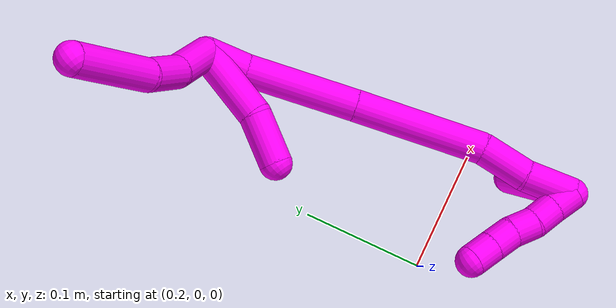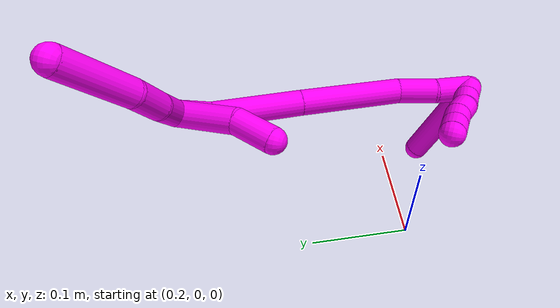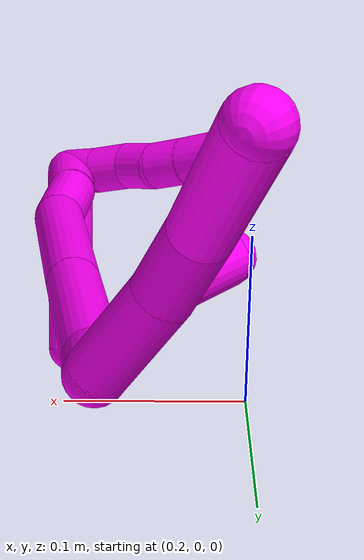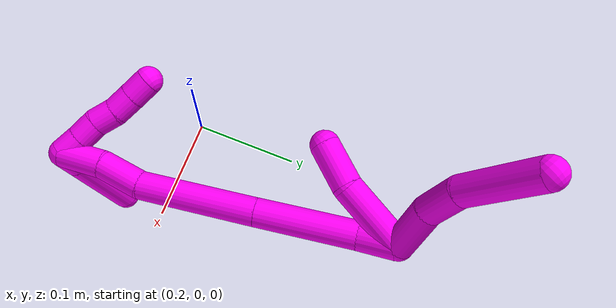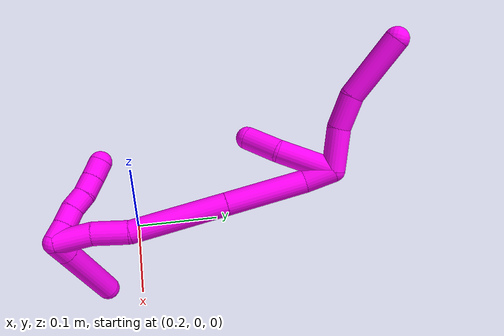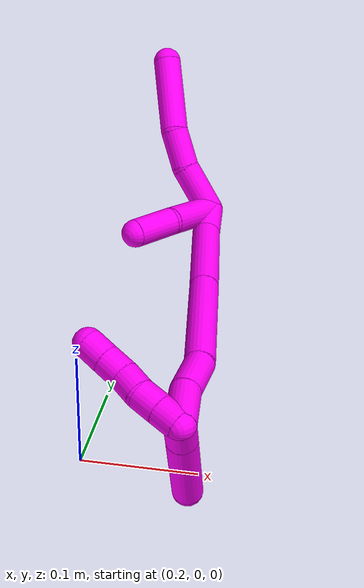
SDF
<sdf version="1.7">
 <world name="default">
  <model name="10">
   <static>0</static>
   <link name="10">
    <collision name="collision-cylinder-e_1_2_8">
     <pose>-0.007839 0.021203 -0.002603 -1.69294 -0.351694 0.396381</pose>
     <geometry><cylinder><radius>0.0125</radius><length>0.04551</length></cylinder></geometry>
     <surface>
      <friction><ode><mu>1.16</mu><mu2>1.16</mu2><slip1>0</slip1><slip2>0</slip2></ode></friction>
      <contact><ode><kp>1e+06</kp><kd>1</kd><max_vel>0</max_vel><min_depth>0.001</min_depth></ode></contact>
     </surface>
    </collision>
    <visual name="visual-cylinder-e_1_2_8">
     <pose>-0.007839 0.021203 -0.002603 -1.69294 -0.351694 0.396381</pose>
     <geometry><cylinder><radius>0.0125</radius><length>0.04551</length></cylinder></geometry>
     <material><ambient>1 0 0.964706 1</ambient></material>
    </visual>
    <collision name="collision-cylinder-e_2_8_9">
     <pose>-0.023078 0.058351 -0.002776 -1.4196 -0.430196 0.371106</pose>
     <geometry><cylinder><radius>0.0125</radius><length>0.035491</length></cylinder></geometry>
     <surface>
      <friction><ode><mu>1.16</mu><mu2>1.16</mu2><slip1>0</slip1><slip2>0</slip2></ode></friction>
      <contact><ode><kp>1e+06</kp><kd>1</kd><max_vel>0</max_vel><min_depth>0.001</min_depth></ode></contact>
     </surface>
    </collision>
    <visual name="visual-cylinder-e_2_8_9">
     <pose>-0.023078 0.058351 -0.002776 -1.4196 -0.430196 0.371106</pose>
     <geometry><cylinder><radius>0.0125</radius><length>0.035491</length></cylinder></geometry>
     <material><ambient>1 0 0.964706 1</ambient></material>
    </visual>
    <collision name="collision-cylinder-e_3_9_6">
     <pose>-0.043132 0.103046 0.013919 -1.11019 -0.375512 0.234563</pose>
     <geometry><cylinder><radius>0.0125</radius><length>0.068999</length></cylinder></geometry>
     <surface>
      <friction><ode><mu>1.16</mu><mu2>1.16</mu2><slip1>0</slip1><slip2>0</slip2></ode></friction>
      <contact><ode><kp>1e+06</kp><kd>1</kd><max_vel>0</max_vel><min_depth>0.001</min_depth></ode></contact>
     </surface>
    </collision>
    <visual name="visual-cylinder-e_3_9_6">
     <pose>-0.043132 0.103046 0.013919 -1.11019 -0.375512 0.234563</pose>
     <geometry><cylinder><radius>0.0125</radius><length>0.068999</length></cylinder></geometry>
     <material><ambient>1 0 0.964706 1</ambient></material>
    </visual>
    <collision name="collision-cylinder-e_1_2_10">
     <pose>-0.004019 0.002014 -0.030168 -3.07493 -0.132138 2.20805</pose>
     <geometry><cylinder><radius>0.0125</radius><length>0.061001</length></cylinder></geometry>
     <surface>
      <friction><ode><mu>1.16</mu><mu2>1.16</mu2><slip1>0</slip1><slip2>0</slip2></ode></friction>
      <contact><ode><kp>1e+06</kp><kd>1</kd><max_vel>0</max_vel><min_depth>0.001</min_depth></ode></contact>
     </surface>
    </collision>
    <visual name="visual-cylinder-e_1_2_10">
     <pose>-0.004019 0.002014 -0.030168 -3.07493 -0.132138 2.20805</pose>
     <geometry><cylinder><radius>0.0125</radius><length>0.061001</length></cylinder></geometry>
     <material><ambient>1 0 0.964706 1</ambient></material>
    </visual>
    <collision name="collision-cylinder-e_2_10_5">
     <pose>-0.004754 0.007473 -0.079245 -2.96138 0.169175 -1.50733</pose>
     <geometry><cylinder><radius>0.0125</radius><length>0.038999</length></cylinder></geometry>
     <surface>
      <friction><ode><mu>1.16</mu><mu2>1.16</mu2><slip1>0</slip1><slip2>0</slip2></ode></friction>
      <contact><ode><kp>1e+06</kp><kd>1</kd><max_vel>0</max_vel><min_depth>0.001</min_depth></ode></contact>
     </surface>
    </collision>
    <visual name="visual-cylinder-e_2_10_5">
     <pose>-0.004754 0.007473 -0.079245 -2.96138 0.169175 -1.50733</pose>
     <geometry><cylinder><radius>0.0125</radius><length>0.038999</length></cylinder></geometry>
     <material><ambient>1 0 0.964706 1</ambient></material>
    </visual>
    <collision name="collision-cylinder-e_1_2_11">
     <pose>-0.000366 -0.009723 -0.013159 2.50526 -0.02235 -0.067836</pose>
     <geometry><cylinder><radius>0.0125</radius><length>0.032731</length></cylinder></geometry>
     <surface>
      <friction><ode><mu>1.16</mu><mu2>1.16</mu2><slip1>0</slip1><slip2>0</slip2></ode></friction>
      <contact><ode><kp>1e+06</kp><kd>1</kd><max_vel>0</max_vel><min_depth>0.001</min_depth></ode></contact>
     </surface>
    </collision>
    <visual name="visual-cylinder-e_1_2_11">
     <pose>-0.000366 -0.009723 -0.013159 2.50526 -0.02235 -0.067836</pose>
     <geometry><cylinder><radius>0.0125</radius><length>0.032731</length></cylinder></geometry>
     <material><ambient>1 0 0.964706 1</ambient></material>
    </visual>
    <collision name="collision-cylinder-e_2_11_12">
     <pose>-0.010738 -0.043106 -0.061189 2.54542 -0.233149 -0.728312</pose>
     <geometry><cylinder><radius>0.0125</radius><length>0.086623</length></cylinder></geometry>
     <surface>
      <friction><ode><mu>1.16</mu><mu2>1.16</mu2><slip1>0</slip1><slip2>0</slip2></ode></friction>
      <contact><ode><kp>1e+06</kp><kd>1</kd><max_vel>0</max_vel><min_depth>0.001</min_depth></ode></contact>
     </surface>
    </collision>
    <visual name="visual-cylinder-e_2_11_12">
     <pose>-0.010738 -0.043106 -0.061189 2.54542 -0.233149 -0.728312</pose>
     <geometry><cylinder><radius>0.0125</radius><length>0.086623</length></cylinder></geometry>
     <material><ambient>1 0 0.964706 1</ambient></material>
    </visual>
    <collision name="collision-cylinder-e_3_12_13">
     <pose>-0.031967 -0.094892 -0.137853 2.54924 -0.219181 -0.69214</pose>
     <geometry><cylinder><radius>0.0125</radius><length>0.103221</length></cylinder></geometry>
     <surface>
      <friction><ode><mu>1.16</mu><mu2>1.16</mu2><slip1>0</slip1><slip2>0</slip2></ode></friction>
      <contact><ode><kp>1e+06</kp><kd>1</kd><max_vel>0</max_vel><min_depth>0.001</min_depth></ode></contact>
     </surface>
    </collision>
    <visual name="visual-cylinder-e_3_12_13">
     <pose>-0.031967 -0.094892 -0.137853 2.54924 -0.219181 -0.69214</pose>
     <geometry><cylinder><radius>0.0125</radius><length>0.103221</length></cylinder></geometry>
     <material><ambient>1 0 0.964706 1</ambient></material>
    </visual>
    <collision name="collision-cylinder-e_4_13_14">
     <pose>-0.046265 -0.129218 -0.197702 2.81082 -0.159788 -0.894525</pose>
     <geometry><cylinder><radius>0.0125</radius><length>0.038674</length></cylinder></geometry>
     <surface>
      <friction><ode><mu>1.16</mu><mu2>1.16</mu2><slip1>0</slip1><slip2>0</slip2></ode></friction>
      <contact><ode><kp>1e+06</kp><kd>1</kd><max_vel>0</max_vel><min_depth>0.001</min_depth></ode></contact>
     </surface>
    </collision>
    <visual name="visual-cylinder-e_4_13_14">
     <pose>-0.046265 -0.129218 -0.197702 2.81082 -0.159788 -0.894525</pose>
     <geometry><cylinder><radius>0.0125</radius><length>0.038674</length></cylinder></geometry>
     <material><ambient>1 0 0.964706 1</ambient></material>
    </visual>
    <collision name="collision-cylinder-e_5_14_1">
     <pose>-0.053287 -0.145174 -0.232025 2.60138 -0.205074 -0.71165</pose>
     <geometry><cylinder><radius>0.0125</radius><length>0.038751</length></cylinder></geometry>
     <surface>
      <friction><ode><mu>1.16</mu><mu2>1.16</mu2><slip1>0</slip1><slip2>0</slip2></ode></friction>
      <contact><ode><kp>1e+06</kp><kd>1</kd><max_vel>0</max_vel><min_depth>0.001</min_depth></ode></contact>
     </surface>
    </collision>
    <visual name="visual-cylinder-e_5_14_1">
     <pose>-0.053287 -0.145174 -0.232025 2.60138 -0.205074 -0.71165</pose>
     <geometry><cylinder><radius>0.0125</radius><length>0.038751</length></cylinder></geometry>
     <material><ambient>1 0 0.964706 1</ambient></material>
    </visual>
    <collision name="collision-cylinder-e_1_1_15">
     <pose>-0.053724 -0.145573 -0.247929 -1.53189 0.358534 -0.345124</pose>
     <geometry><cylinder><radius>0.0125</radius><length>0.02</length></cylinder></geometry>
     <surface>
      <friction><ode><mu>1.16</mu><mu2>1.16</mu2><slip1>0</slip1><slip2>0</slip2></ode></friction>
      <contact><ode><kp>1e+06</kp><kd>1</kd><max_vel>0</max_vel><min_depth>0.001</min_depth></ode></contact>
     </surface>
    </collision>
    <visual name="visual-cylinder-e_1_1_15">
     <pose>-0.053724 -0.145573 -0.247929 -1.53189 0.358534 -0.345124</pose>
     <geometry><cylinder><radius>0.0125</radius><length>0.02</length></cylinder></geometry>
     <material><ambient>1 0 0.964706 1</ambient></material>
    </visual>
    <collision name="collision-cylinder-e_2_15_16">
     <pose>-0.04723 -0.126673 -0.247649 -1.57964 0.303151 -0.305802</pose>
     <geometry><cylinder><radius>0.0125</radius><length>0.02</length></cylinder></geometry>
     <surface>
      <friction><ode><mu>1.16</mu><mu2>1.16</mu2><slip1>0</slip1><slip2>0</slip2></ode></friction>
      <contact><ode><kp>1e+06</kp><kd>1</kd><max_vel>0</max_vel><min_depth>0.001</min_depth></ode></contact>
     </surface>
    </collision>
    <visual name="visual-cylinder-e_2_15_16">
     <pose>-0.04723 -0.126673 -0.247649 -1.57964 0.303151 -0.305802</pose>
     <geometry><cylinder><radius>0.0125</radius><length>0.02</length></cylinder></geometry>
     <material><ambient>1 0 0.964706 1</ambient></material>
    </visual>
    <collision name="collision-cylinder-e_3_16_17">
     <pose>-0.040947 -0.107987 -0.245378 -1.31859 0.335975 -0.261352</pose>
     <geometry><cylinder><radius>0.0125</radius><length>0.02</length></cylinder></geometry>
     <surface>
      <friction><ode><mu>1.16</mu><mu2>1.16</mu2><slip1>0</slip1><slip2>0</slip2></ode></friction>
      <contact><ode><kp>1e+06</kp><kd>1</kd><max_vel>0</max_vel><min_depth>0.001</min_depth></ode></contact>
     </surface>
    </collision>
    <visual name="visual-cylinder-e_3_16_17">
     <pose>-0.040947 -0.107987 -0.245378 -1.31859 0.335975 -0.261352</pose>
     <geometry><cylinder><radius>0.0125</radius><length>0.02</length></cylinder></geometry>
     <material><ambient>1 0 0.964706 1</ambient></material>
    </visual>
    <collision name="collision-cylinder-e_4_17_18">
     <pose>-0.034979 -0.089213 -0.242712 -1.53862 0.270445 -0.261979</pose>
     <geometry><cylinder><radius>0.0125</radius><length>0.02</length></cylinder></geometry>
     <surface>
      <friction><ode><mu>1.16</mu><mu2>1.16</mu2><slip1>0</slip1><slip2>0</slip2></ode></friction>
      <contact><ode><kp>1e+06</kp><kd>1</kd><max_vel>0</max_vel><min_depth>0.001</min_depth></ode></contact>
     </surface>
    </collision>
    <visual name="visual-cylinder-e_4_17_18">
     <pose>-0.034979 -0.089213 -0.242712 -1.53862 0.270445 -0.261979</pose>
     <geometry><cylinder><radius>0.0125</radius><length>0.02</length></cylinder></geometry>
     <material><ambient>1 0 0.964706 1</ambient></material>
    </visual>
    <collision name="collision-cylinder-e_5_18_4">
     <pose>-0.029865 -0.069888 -0.242133 -1.54308 0.246777 -0.240096</pose>
     <geometry><cylinder><radius>0.0125</radius><length>0.02</length></cylinder></geometry>
     <surface>
      <friction><ode><mu>1.16</mu><mu2>1.16</mu2><slip1>0</slip1><slip2>0</slip2></ode></friction>
      <contact><ode><kp>1e+06</kp><kd>1</kd><max_vel>0</max_vel><min_depth>0.001</min_depth></ode></contact>
     </surface>
    </collision>
    <visual name="visual-cylinder-e_5_18_4">
     <pose>-0.029865 -0.069888 -0.242133 -1.54308 0.246777 -0.240096</pose>
     <geometry><cylinder><radius>0.0125</radius><length>0.02</length></cylinder></geometry>
     <material><ambient>1 0 0.964706 1</ambient></material>
    </visual>
    <collision name="collision-cylinder-e_1_1_19">
     <pose>-0.048254 -0.158697 -0.244203 0.744238 1.0163 0.428084</pose>
     <geometry><cylinder><radius>0.0125</radius><length>0.021124</length></cylinder></geometry>
     <surface>
      <friction><ode><mu>1.16</mu><mu2>1.16</mu2><slip1>0</slip1><slip2>0</slip2></ode></friction>
      <contact><ode><kp>1e+06</kp><kd>1</kd><max_vel>0</max_vel><min_depth>0.001</min_depth></ode></contact>
     </surface>
    </collision>
    <visual name="visual-cylinder-e_1_1_19">
     <pose>-0.048254 -0.158697 -0.244203 0.744238 1.0163 0.428084</pose>
     <geometry><cylinder><radius>0.0125</radius><length>0.021124</length></cylinder></geometry>
     <material><ambient>1 0 0.964706 1</ambient></material>
    </visual>
    <collision name="collision-cylinder-e_2_19_3">
     <pose>-0.005694 -0.176674 -0.225084 0.757418 1.01877 0.437406</pose>
     <geometry><cylinder><radius>0.0125</radius><length>0.078876</length></cylinder></geometry>
     <surface>
      <friction><ode><mu>1.16</mu><mu2>1.16</mu2><slip1>0</slip1><slip2>0</slip2></ode></friction>
      <contact><ode><kp>1e+06</kp><kd>1</kd><max_vel>0</max_vel><min_depth>0.001</min_depth></ode></contact>
     </surface>
    </collision>
    <visual name="visual-cylinder-e_2_19_3">
     <pose>-0.005694 -0.176674 -0.225084 0.757418 1.01877 0.437406</pose>
     <geometry><cylinder><radius>0.0125</radius><length>0.078876</length></cylinder></geometry>
     <material><ambient>1 0 0.964706 1</ambient></material>
    </visual>
    <collision name="collision-sphere-3">
     <pose>0.027886 -0.190883 -0.210057 0 -0 0</pose>
     <geometry><sphere><radius>0.0125</radius></sphere></geometry>
     <surface>
      <friction><ode><mu>1.16</mu><mu2>1.16</mu2><slip1>0</slip1><slip2>0</slip2></ode></friction>
      <contact><ode><kp>1e+06</kp><kd>1</kd><max_vel>0</max_vel><min_depth>0.001</min_depth></ode></contact>
     </surface>
    </collision>
    <visual name="visual-sphere-3">
     <pose>0.027886 -0.190883 -0.210057 0 -0 0</pose>
     <geometry><sphere><radius>0.0125</radius></sphere></geometry>
     <material><ambient>1 0 0.964706 1</ambient></material>
    </visual>
    <collision name="collision-sphere-19">
     <pose>-0.039274 -0.162465 -0.240112 0 -0 0</pose>
     <geometry><sphere><radius>0.0125</radius></sphere></geometry>
     <surface>
      <friction><ode><mu>1.16</mu><mu2>1.16</mu2><slip1>0</slip1><slip2>0</slip2></ode></friction>
      <contact><ode><kp>1e+06</kp><kd>1</kd><max_vel>0</max_vel><min_depth>0.001</min_depth></ode></contact>
     </surface>
    </collision>
    <visual name="visual-sphere-19">
     <pose>-0.039274 -0.162465 -0.240112 0 -0 0</pose>
     <geometry><sphere><radius>0.0125</radius></sphere></geometry>
     <material><ambient>1 0 0.964706 1</ambient></material>
    </visual>
    <collision name="collision-sphere-5">
     <pose>-0.001471 0.010918 -0.098155 0 -0 0</pose>
     <geometry><sphere><radius>0.0125</radius></sphere></geometry>
     <surface>
      <friction><ode><mu>1.16</mu><mu2>1.16</mu2><slip1>0</slip1><slip2>0</slip2></ode></friction>
      <contact><ode><kp>1e+06</kp><kd>1</kd><max_vel>0</max_vel><min_depth>0.001</min_depth></ode></contact>
     </surface>
    </collision>
    <visual name="visual-sphere-5">
     <pose>-0.001471 0.010918 -0.098155 0 -0 0</pose>
     <geometry><sphere><radius>0.0125</radius></sphere></geometry>
     <material><ambient>1 0 0.964706 1</ambient></material>
    </visual>
    <collision name="collision-sphere-10">
     <pose>-0.008037 0.004028 -0.060335 0 -0 0</pose>
     <geometry><sphere><radius>0.0125</radius></sphere></geometry>
     <surface>
      <friction><ode><mu>1.16</mu><mu2>1.16</mu2><slip1>0</slip1><slip2>0</slip2></ode></friction>
      <contact><ode><kp>1e+06</kp><kd>1</kd><max_vel>0</max_vel><min_depth>0.001</min_depth></ode></contact>
     </surface>
    </collision>
    <visual name="visual-sphere-10">
     <pose>-0.008037 0.004028 -0.060335 0 -0 0</pose>
     <geometry><sphere><radius>0.0125</radius></sphere></geometry>
     <material><ambient>1 0 0.964706 1</ambient></material>
    </visual>
    <collision name="collision-sphere-6">
     <pose>-0.055785 0.131797 0.028186 0 -0 0</pose>
     <geometry><sphere><radius>0.0125</radius></sphere></geometry>
     <surface>
      <friction><ode><mu>1.16</mu><mu2>1.16</mu2><slip1>0</slip1><slip2>0</slip2></ode></friction>
      <contact><ode><kp>1e+06</kp><kd>1</kd><max_vel>0</max_vel><min_depth>0.001</min_depth></ode></contact>
     </surface>
    </collision>
    <visual name="visual-sphere-6">
     <pose>-0.055785 0.131797 0.028186 0 -0 0</pose>
     <geometry><sphere><radius>0.0125</radius></sphere></geometry>
     <material><ambient>1 0 0.964706 1</ambient></material>
    </visual>
    <collision name="collision-sphere-9">
     <pose>-0.030479 0.074295 -0.000347 0 -0 0</pose>
     <geometry><sphere><radius>0.0125</radius></sphere></geometry>
     <surface>
      <friction><ode><mu>1.16</mu><mu2>1.16</mu2><slip1>0</slip1><slip2>0</slip2></ode></friction>
      <contact><ode><kp>1e+06</kp><kd>1</kd><max_vel>0</max_vel><min_depth>0.001</min_depth></ode></contact>
     </surface>
    </collision>
    <visual name="visual-sphere-9">
     <pose>-0.030479 0.074295 -0.000347 0 -0 0</pose>
     <geometry><sphere><radius>0.0125</radius></sphere></geometry>
     <material><ambient>1 0 0.964706 1</ambient></material>
    </visual>
    <collision name="collision-sphere-2">
     <geometry><sphere><radius>0.0125</radius></sphere></geometry>
     <surface>
      <friction><ode><mu>1.16</mu><mu2>1.16</mu2><slip1>0</slip1><slip2>0</slip2></ode></friction>
      <contact><ode><kp>1e+06</kp><kd>1</kd><max_vel>0</max_vel><min_depth>0.001</min_depth></ode></contact>
     </surface>
    </collision>
    <visual name="visual-sphere-2">
     <geometry><sphere><radius>0.0125</radius></sphere></geometry>
     <material><ambient>1 0 0.964706 1</ambient></material>
    </visual>
    <collision name="collision-sphere-8">
     <pose>-0.015678 0.042406 -0.005205 0 -0 0</pose>
     <geometry><sphere><radius>0.0125</radius></sphere></geometry>
     <surface>
      <friction><ode><mu>1.16</mu><mu2>1.16</mu2><slip1>0</slip1><slip2>0</slip2></ode></friction>
      <contact><ode><kp>1e+06</kp><kd>1</kd><max_vel>0</max_vel><min_depth>0.001</min_depth></ode></contact>
     </surface>
    </collision>
    <visual name="visual-sphere-8">
     <pose>-0.015678 0.042406 -0.005205 0 -0 0</pose>
     <geometry><sphere><radius>0.0125</radius></sphere></geometry>
     <material><ambient>1 0 0.964706 1</ambient></material>
    </visual>
    <collision name="collision-sphere-11">
     <pose>-0.000731 -0.019446 -0.026318 0 -0 0</pose>
     <geometry><sphere><radius>0.0125</radius></sphere></geometry>
     <surface>
      <friction><ode><mu>1.16</mu><mu2>1.16</mu2><slip1>0</slip1><slip2>0</slip2></ode></friction>
      <contact><ode><kp>1e+06</kp><kd>1</kd><max_vel>0</max_vel><min_depth>0.001</min_depth></ode></contact>
     </surface>
    </collision>
    <visual name="visual-sphere-11">
     <pose>-0.000731 -0.019446 -0.026318 0 -0 0</pose>
     <geometry><sphere><radius>0.0125</radius></sphere></geometry>
     <material><ambient>1 0 0.964706 1</ambient></material>
    </visual>
    <collision name="collision-sphere-12">
     <pose>-0.020745 -0.066767 -0.096059 0 -0 0</pose>
     <geometry><sphere><radius>0.0125</radius></sphere></geometry>
     <surface>
      <friction><ode><mu>1.16</mu><mu2>1.16</mu2><slip1>0</slip1><slip2>0</slip2></ode></friction>
      <contact><ode><kp>1e+06</kp><kd>1</kd><max_vel>0</max_vel><min_depth>0.001</min_depth></ode></contact>
     </surface>
    </collision>
    <visual name="visual-sphere-12">
     <pose>-0.020745 -0.066767 -0.096059 0 -0 0</pose>
     <geometry><sphere><radius>0.0125</radius></sphere></geometry>
     <material><ambient>1 0 0.964706 1</ambient></material>
    </visual>
    <collision name="collision-sphere-13">
     <pose>-0.043189 -0.123018 -0.179646 0 -0 0</pose>
     <geometry><sphere><radius>0.0125</radius></sphere></geometry>
     <surface>
      <friction><ode><mu>1.16</mu><mu2>1.16</mu2><slip1>0</slip1><slip2>0</slip2></ode></friction>
      <contact><ode><kp>1e+06</kp><kd>1</kd><max_vel>0</max_vel><min_depth>0.001</min_depth></ode></contact>
     </surface>
    </collision>
    <visual name="visual-sphere-13">
     <pose>-0.043189 -0.123018 -0.179646 0 -0 0</pose>
     <geometry><sphere><radius>0.0125</radius></sphere></geometry>
     <material><ambient>1 0 0.964706 1</ambient></material>
    </visual>
    <collision name="collision-sphere-14">
     <pose>-0.049342 -0.135418 -0.215757 0 -0 0</pose>
     <geometry><sphere><radius>0.0125</radius></sphere></geometry>
     <surface>
      <friction><ode><mu>1.16</mu><mu2>1.16</mu2><slip1>0</slip1><slip2>0</slip2></ode></friction>
      <contact><ode><kp>1e+06</kp><kd>1</kd><max_vel>0</max_vel><min_depth>0.001</min_depth></ode></contact>
     </surface>
    </collision>
    <visual name="visual-sphere-14">
     <pose>-0.049342 -0.135418 -0.215757 0 -0 0</pose>
     <geometry><sphere><radius>0.0125</radius></sphere></geometry>
     <material><ambient>1 0 0.964706 1</ambient></material>
    </visual>
    <collision name="collision-sphere-1">
     <pose>-0.057233 -0.15493 -0.248293 0 -0 0</pose>
     <geometry><sphere><radius>0.0125</radius></sphere></geometry>
     <surface>
      <friction><ode><mu>1.16</mu><mu2>1.16</mu2><slip1>0</slip1><slip2>0</slip2></ode></friction>
      <contact><ode><kp>1e+06</kp><kd>1</kd><max_vel>0</max_vel><min_depth>0.001</min_depth></ode></contact>
     </surface>
    </collision>
    <visual name="visual-sphere-1">
     <pose>-0.057233 -0.15493 -0.248293 0 -0 0</pose>
     <geometry><sphere><radius>0.0125</radius></sphere></geometry>
     <material><ambient>1 0 0.964706 1</ambient></material>
    </visual>
    <collision name="collision-sphere-18">
     <pose>-0.032307 -0.079581 -0.242402 0 -0 0</pose>
     <geometry><sphere><radius>0.0125</radius></sphere></geometry>
     <surface>
      <friction><ode><mu>1.16</mu><mu2>1.16</mu2><slip1>0</slip1><slip2>0</slip2></ode></friction>
      <contact><ode><kp>1e+06</kp><kd>1</kd><max_vel>0</max_vel><min_depth>0.001</min_depth></ode></contact>
     </surface>
    </collision>
    <visual name="visual-sphere-18">
     <pose>-0.032307 -0.079581 -0.242402 0 -0 0</pose>
     <geometry><sphere><radius>0.0125</radius></sphere></geometry>
     <material><ambient>1 0 0.964706 1</ambient></material>
    </visual>
    <collision name="collision-sphere-15">
     <pose>-0.050215 -0.136216 -0.247565 0 -0 0</pose>
     <geometry><sphere><radius>0.0125</radius></sphere></geometry>
     <surface>
      <friction><ode><mu>1.16</mu><mu2>1.16</mu2><slip1>0</slip1><slip2>0</slip2></ode></friction>
      <contact><ode><kp>1e+06</kp><kd>1</kd><max_vel>0</max_vel><min_depth>0.001</min_depth></ode></contact>
     </surface>
    </collision>
    <visual name="visual-sphere-15">
     <pose>-0.050215 -0.136216 -0.247565 0 -0 0</pose>
     <geometry><sphere><radius>0.0125</radius></sphere></geometry>
     <material><ambient>1 0 0.964706 1</ambient></material>
    </visual>
    <collision name="collision-sphere-16">
     <pose>-0.044244 -0.117129 -0.247734 0 -0 0</pose>
     <geometry><sphere><radius>0.0125</radius></sphere></geometry>
     <surface>
      <friction><ode><mu>1.16</mu><mu2>1.16</mu2><slip1>0</slip1><slip2>0</slip2></ode></friction>
      <contact><ode><kp>1e+06</kp><kd>1</kd><max_vel>0</max_vel><min_depth>0.001</min_depth></ode></contact>
     </surface>
    </collision>
    <visual name="visual-sphere-16">
     <pose>-0.044244 -0.117129 -0.247734 0 -0 0</pose>
     <geometry><sphere><radius>0.0125</radius></sphere></geometry>
     <material><ambient>1 0 0.964706 1</ambient></material>
    </visual>
    <collision name="collision-sphere-17">
     <pose>-0.037651 -0.098845 -0.243022 0 -0 0</pose>
     <geometry><sphere><radius>0.0125</radius></sphere></geometry>
     <surface>
      <friction><ode><mu>1.16</mu><mu2>1.16</mu2><slip1>0</slip1><slip2>0</slip2></ode></friction>
      <contact><ode><kp>1e+06</kp><kd>1</kd><max_vel>0</max_vel><min_depth>0.001</min_depth></ode></contact>
     </surface>
    </collision>
    <visual name="visual-sphere-17">
     <pose>-0.037651 -0.098845 -0.243022 0 -0 0</pose>
     <geometry><sphere><radius>0.0125</radius></sphere></geometry>
     <material><ambient>1 0 0.964706 1</ambient></material>
    </visual>
    <collision name="collision-sphere-4">
     <pose>-0.027422 -0.060195 -0.241864 0 -0 0</pose>
     <geometry><sphere><radius>0.0125</radius></sphere></geometry>
     <surface>
      <friction><ode><mu>1.16</mu><mu2>1.16</mu2><slip1>0</slip1><slip2>0</slip2></ode></friction>
      <contact><ode><kp>1e+06</kp><kd>1</kd><max_vel>0</max_vel><min_depth>0.001</min_depth></ode></contact>
     </surface>
    </collision>
    <visual name="visual-sphere-4">
     <pose>-0.027422 -0.060195 -0.241864 0 -0 0</pose>
     <geometry><sphere><radius>0.0125</radius></sphere></geometry>
     <material><ambient>1 0 0.964706 1</ambient></material>
    </visual>
    <inertial>
     <pose>-0.024376 -0.055979 -0.117617 0 -0 0</pose>
     <mass>0.75</mass>
     <inertia>
      <ixx>0.000107</ixx>
      <ixy>0</ixy>
      <ixz>0</ixz>
      <iyy>-9.5e-05</iyy>
      <iyz>0</iyz>
      <izz>5.2e-05</izz>
     </inertia>
    </inertial>
   </link>
   <pose>0.27391 0.215341 0.141914 1.6024 0.952831 2.6803</pose>
  </model>
 </world>
</sdf>
